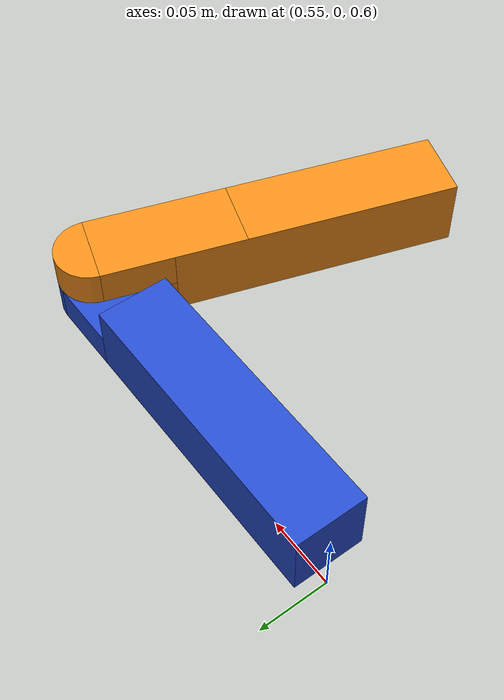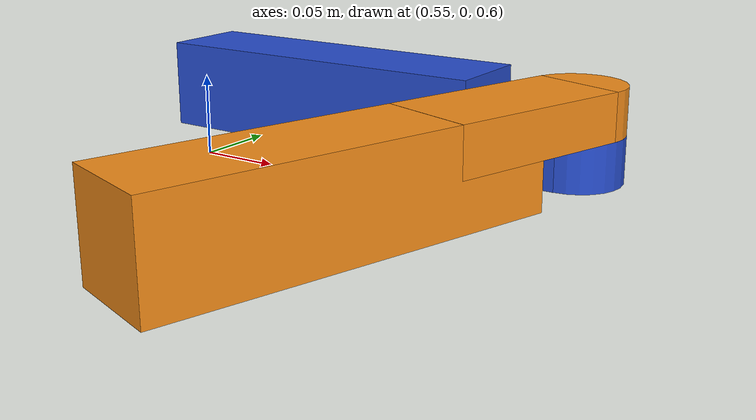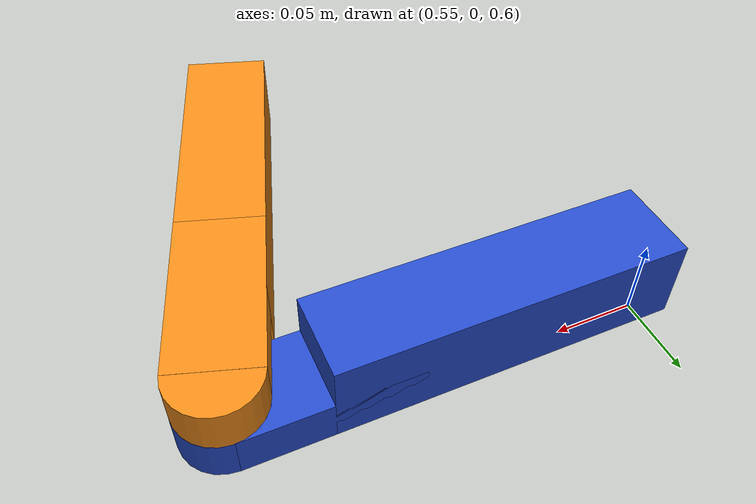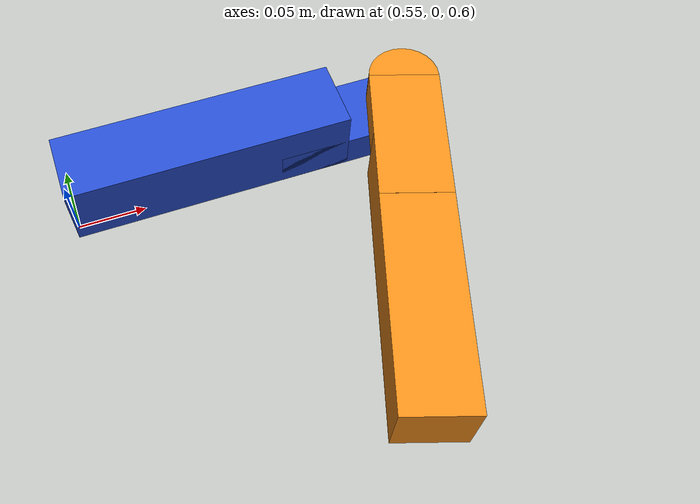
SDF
<?xml version="1.0"?>
<sdf version="1.6">
  <world name="default">

    <!-- Light -->
    <include>
      <uri>model://sun</uri>
    </include>

    <!-- Ground Plane -->
    <include>
      <uri>model://ground_plane</uri>
    </include>

    <!-- Floating Base 1RDOF 2 Link -->
    <include>
	<uri>model://floating_base_1RDOF_2Link</uri>
	<pose frame="">0.8 0 0.1 0 0 1.57</pose>
    </include>

  </world>
</sdf>

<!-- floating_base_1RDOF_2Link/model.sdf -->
<sdf version='1.6'>
  <model name='floating_base_1RDOF_2Link'>
    <link name='first_link'>
      <pose frame=''>0 0 0.55 0 -0 0</pose>
      <inertial>
        <pose frame=''>0 0 0 0 -0 0</pose>
        <mass>1</mass>
        <inertia>
          <ixx>0.001</ixx>
          <ixy>0</ixy>
          <ixz>0</ixz>
          <iyy>0.001</iyy>
          <iyz>0</iyz>
          <izz>0.001</izz>
        </inertia>
      </inertial>
      <collision name='first_link_collision'>
        <pose frame=''>0 0 -0.01255 0 -0 0</pose>
        <geometry>
          <cylinder>
            <length>0.025</length>
            <radius>0.025</radius>
          </cylinder>
        </geometry>
      </collision>
      <collision name='first_link_collision_1'>
        <pose frame=''>0 0.05 -0.0125 0 -0 0</pose>
        <geometry>
          <box>
            <size>0.05 0.1 0.025</size>
          </box>
        </geometry>
      </collision>
      <collision name='first_link_collision_2'>
        <pose frame=''>0 0.15 0 0 -0 0</pose>
        <geometry>
          <box>
            <size>0.05 0.2 0.05</size>
          </box>
        </geometry>
      </collision>
      <visual name='first_link_visual'>
        <pose frame=''>0 0 -0.0125 0 -0 0</pose>
        <geometry>
          <cylinder>
            <length>0.025</length>
            <radius>0.025</radius>
          </cylinder>
        </geometry>
        <material>
          <script>
            <name>Gazebo/Blue</name>
            <uri>file://media/materials/scripts/gazebo.material</uri>
          </script>
        </material>
      </visual>
      <visual name='first_link_visual_1'>
        <pose frame=''>0 0.05 -0.01255 0 -0 0</pose>
        <geometry>
          <box>
            <size>0.05 0.1 0.025</size>
          </box>
        </geometry>
        <material>
          <script>
            <name>Gazebo/Blue</name>
            <uri>file://media/materials/scripts/gazebo.material</uri>
          </script>
        </material>
      </visual>
      <visual name='first_link_visual_2'>
        <pose frame=''>0 0.15 0 0 -0 0</pose>
        <geometry>
          <box>
            <size>0.05 0.2 0.05</size>
          </box>
        </geometry>
        <material>
          <script>
            <name>Gazebo/Blue</name>
            <uri>file://media/materials/scripts/gazebo.material</uri>
          </script>
        </material>
      </visual>
    </link>
    <link name='second_link'>
      <pose frame=''>0 0 0.55 0 -0 1.256</pose>
      <inertial>
        <pose frame=''>0 0 0 0 -0 0</pose>
        <mass>1</mass>
        <inertia>
          <ixx>0.001</ixx>
          <ixy>0</ixy>
          <ixz>0</ixz>
          <iyy>0.001</iyy>
          <iyz>0</iyz>
          <izz>0.001</izz>
        </inertia>
      </inertial>
      <collision name='second_link_collision'>
        <pose frame=''>0 0 0.01255 0 -0 0</pose>
        <geometry>
          <cylinder>
            <length>0.025</length>
            <radius>0.025</radius>
          </cylinder>
        </geometry>
      </collision>
      <collision name='second_link_collision_1'>
        <pose frame=''>0 0.05 0.0125 0 -0 0</pose>
        <geometry>
          <box>
            <size>0.05 0.1 0.025</size>
          </box>
        </geometry>
      </collision>
      <collision name='second_link_collision_2'>
        <pose frame=''>0 0.15 0 0 -0 0</pose>
        <geometry>
          <box>
            <size>0.05 0.2 0.05</size>
          </box>
        </geometry>
      </collision>
      <visual name='second_link_visual'>
        <pose frame=''>0 0 0.0125 0 -0 0</pose>
        <geometry>
          <cylinder>
            <length>0.025</length>
            <radius>0.025</radius>
          </cylinder>
        </geometry>
        <material>
          <script>
            <name>Gazebo/Orange</name>
            <uri>file://media/materials/scripts/gazebo.material</uri>
          </script>
        </material>
      </visual>
      <visual name='second_link_visual_1'>
        <pose frame=''>0 0.05 0.01255 0 -0 0</pose>
        <geometry>
          <box>
            <size>0.05 0.1 0.025</size>
          </box>
        </geometry>
        <material>
          <script>
            <name>Gazebo/Orange</name>
            <uri>file://media/materials/scripts/gazebo.material</uri>
          </script>
        </material>
      </visual>
      <visual name='second_link_visual_2'>
        <pose frame=''>0 0.15 0 0 -0 0</pose>
        <geometry>
          <box>
            <size>0.05 0.2 0.05</size>
          </box>
        </geometry>
        <material>
          <script>
            <name>Gazebo/Orange</name>
            <uri>file://media/materials/scripts/gazebo.material</uri>
          </script>
        </material>
      </visual>
    </link>
    <joint name='first_joint' type='revolute'>
      <child>second_link</child>
      <parent>first_link</parent>
      <axis>
        <xyz>0 0 1</xyz>
        <limit>
          <lower>0</lower>
          <upper>1.57</upper>
          <effort>30</effort>
          <velocity>1</velocity>
        </limit>
        <dynamics>
          <spring_reference>0</spring_reference>
          <spring_stiffness>0</spring_stiffness>
        </dynamics>
        <use_parent_model_frame>1</use_parent_model_frame>
      </axis>
    </joint>
  </model>
</sdf>
